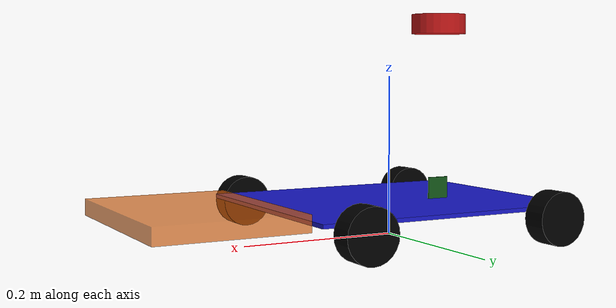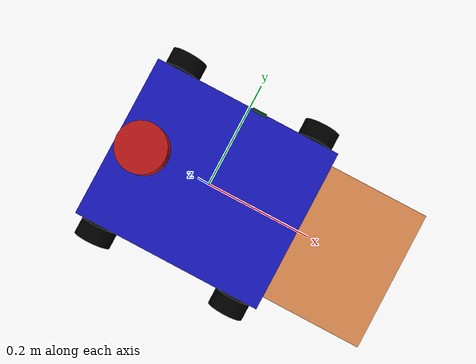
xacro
<?xml version="1.0"?>
<robot xmlns:xacro="http://www.ros.org/wiki/xacro" name="mecanum_robot">

    <!-- chassis properties -->
    <xacro:property name="chassis_length" value="0.35"/>
    <xacro:property name="chassis_width"  value="0.30"/>
    <xacro:property name="chassis_height" value="0.005"/>
    <xacro:property name="chassis_mass"   value="1.5"/>
    <xacro:property name="wheel_radius"   value="0.0325"/>
    <xacro:property name="wheel_thickness" value="0.03"/>
    <xacro:property name="wheel_mass"     value="0.1"/>
    <xacro:property name="ground_clearance" value="0.04"/>

    <!-- Temporary gripper collision footprint. -->
    <xacro:property name="gripper_box_length" value="0.18"/>
    <xacro:property name="gripper_box_width" value="0.25"/>
    <xacro:property name="gripper_box_height" value="0.02"/>
    <xacro:property name="gripper_box_mass" value="0.25"/>

    <xacro:property name="wheel_inset_x" value="0.045"/>
    <xacro:property name="wheel_inset_y" value="0.015"/>

    <xacro:property name="lidar_radius"     value="0.035"/>
    <xacro:property name="lidar_height"     value="0.025"/>
    <xacro:property name="lidar_mass"       value="0.2"/>
    <xacro:property name="lidar_x_offset"   value="-0.075"/>
    <xacro:property name="lidar_z_offset"   value="0.21"/>

    <!-- Raspberry Pi Camera Module 2 dimensions (metres). -->
    <xacro:property name="camera_width" value="0.025"/>
    <xacro:property name="camera_height" value="0.024"/>
    <xacro:property name="camera_depth" value="0.009"/>
    <xacro:property name="camera_board_depth" value="0.0016"/>
    <xacro:property name="camera_mass" value="0.01"/>
    <xacro:property name="camera_update_rate" value="10"/>
    <xacro:property name="camera_x_offset"   value="0.0205"/>
    <xacro:property name="camera_y_offset"   value="${ (chassis_width/2.0) - 0.002}"/>
    <xacro:property name="camera_z_offset"   value="0.01855"/>

    <xacro:property name="wheel_pos_x" value="${(chassis_length / 2.0) - wheel_inset_x}"/>
    <xacro:property name="wheel_pos_y" value="${(chassis_width / 2.0) + wheel_inset_y}"/>
    <xacro:property name="chassis_pos_z" value="${ground_clearance + (chassis_height / 2.0)}"/>
    <xacro:property name="wheel_pos_z"   value="${wheel_radius}"/>

    <xacro:property name="lidar_update_rate"   value="10"/>
    <xacro:property name="lidar_samples"       value="360"/>
    <xacro:property name="lidar_min_angle"     value="-3.14159"/>
    <xacro:property name="lidar_max_angle"     value="3.14159"/>
    <xacro:property name="lidar_min_range"     value="0.15"/>
    <xacro:property name="lidar_max_range"     value="12.0"/>
    <xacro:property name="lidar_noise_stddev"  value="0.01"/>

    <xacro:property name="wheelbase"        value="${wheel_pos_x * 2.0}"/>
    <xacro:property name="wheel_separation" value="${wheel_pos_y * 2.0}"/>

    <xacro:property name="imu_sensor_L_x_offset" value="-0.105"/>
    <xacro:property name="imu_sensor_L_y_offset" value="0.080"/>
    <xacro:property name="imu_sensor_R_x_offset" value="-0.105"/>
    <xacro:property name="imu_sensor_R_y_offset" value="-0.090"/>
    <xacro:property name="imu_sensor_z_offset" value="0.2"/>

    <!-- Sim Toggle -->
    <xacro:arg name="use_sim" default="false" />

    <xacro:macro name="inertial_box" params="mass x y z">
        <inertial>
            <origin xyz="0 0 0" rpy="0 0 0"/>
            <mass value="${mass}"/>
            <inertia ixx="${(mass/12.0) * (y*y + z*z)}" ixy="0.0" ixz="0.0"
                     iyy="${(mass/12.0) * (x*x + z*z)}" iyz="0.0"
                     izz="${(mass/12.0) * (x*x + y*y)}"/>
        </inertial>
    </xacro:macro>

    <xacro:macro name="inertial_cylinder" params="mass radius length">
        <inertial>
            <origin xyz="0 0 0" rpy="0 0 0"/>
            <mass value="${mass}"/>
            <inertia ixx="${(mass/12.0) * (3*radius*radius + length*length)}" ixy="0.0" ixz="0.0"
                     iyy="${(mass/12.0) * (3*radius*radius + length*length)}" iyz="0.0"
                     izz="${(0.5) * mass * (radius*radius)}"/>
        </inertial>
    </xacro:macro>

    <link name="base_link"/>

    <link name="chassis">
        <visual>
            <geometry>
                <box size="${chassis_length} ${chassis_width} ${chassis_height}"/>
            </geometry>
            <material name="blue"><color rgba="0.1 0.1 0.8 1.0"/></material>
        </visual>
        <collision>
            <geometry>
                <box size="${chassis_length} ${chassis_width} ${chassis_height}"/>
            </geometry>
        </collision>
        <xacro:inertial_box mass="${chassis_mass}" x="${chassis_length}" y="${chassis_width}" z="${chassis_height}"/>
    </link>

    <joint name="chassis_joint" type="fixed">
        <parent link="base_link"/>
        <child link="chassis"/>
        <origin xyz="0 0 ${chassis_pos_z}" rpy="0 0 0"/>
    </joint>

    <!-- Placeholder gripper collision box. Its 25 cm side is parallel to the
         robot width (Y), and its 18 cm side extends forward along +X. -->
    <link name="gripper_collision_box">
        <visual>
            <geometry>
                <box size="${gripper_box_length} ${gripper_box_width} ${gripper_box_height}"/>
            </geometry>
            <material name="gripper_orange">
                <color rgba="0.9 0.4 0.05 0.7"/>
            </material>
        </visual>
        <collision>
            <geometry>
                <box size="${gripper_box_length} ${gripper_box_width} ${gripper_box_height}"/>
            </geometry>
        </collision>
        <xacro:inertial_box
            mass="${gripper_box_mass}"
            x="${gripper_box_length}"
            y="${gripper_box_width}"
            z="${gripper_box_height}"/>
    </link>

    <joint name="gripper_collision_box_joint" type="fixed">
        <parent link="chassis"/>
        <child link="gripper_collision_box"/>
        <origin xyz="${(chassis_length + gripper_box_length) / 2.0} 0 0" rpy="0 0 0"/>
    </joint>

    <xacro:macro name="mecanum_wheel" params="prefix x_reflect y_reflect z_axis_reflect">
        <link name="${prefix}_wheel">
            <visual>
                <origin xyz="0 0 0" rpy="${pi/2} 0 0"/>
                <geometry>
                    <cylinder radius="${wheel_radius}" length="${wheel_thickness}"/>
                </geometry>
                <material name="black"><color rgba="0.0 0.0 0.0 1.0"/></material>
            </visual>
            <collision>
                <origin xyz="0 0 0" rpy="0 0 0"/>
                <geometry>
                    <sphere radius="${wheel_radius}"/>
                </geometry>
            </collision>
            <xacro:inertial_cylinder mass="${wheel_mass}" radius="${wheel_radius}" length="${wheel_thickness}"/>
        </link>

        <joint name="${prefix}_wheel_joint" type="continuous">
            <parent link="base_link"/>
            <child link="${prefix}_wheel"/>
            <origin xyz="${x_reflect * wheel_pos_x} ${y_reflect * wheel_pos_y} ${wheel_pos_z}" rpy="0 0 0"/>
            <axis xyz="0 1 0"/>
        </joint>

        <gazebo reference="${prefix}_wheel">
            <surface>
                <friction>
                    <ode>
                        <mu>0.0</mu>   <mu2>0.0</mu2>
                    </ode>
                </friction>
            </surface>
        </gazebo>
    </xacro:macro>

    <xacro:mecanum_wheel prefix="front_left"  x_reflect="1"  y_reflect="1"  z_axis_reflect="1" />
    <xacro:mecanum_wheel prefix="rear_left"   x_reflect="-1" y_reflect="1"  z_axis_reflect="1" />
    <xacro:mecanum_wheel prefix="front_right" x_reflect="1"  y_reflect="-1" z_axis_reflect="-1" />
    <xacro:mecanum_wheel prefix="rear_right"  x_reflect="-1" y_reflect="-1" z_axis_reflect="-1" />

    <!-- LIDAR -->
    <link name="laser_frame">
        <visual>
            <geometry>
                <cylinder radius="${lidar_radius}" length="${lidar_height}"/>
            </geometry>
            <material name="red"><color rgba="0.8 0.1 0.1 1.0"/></material>
        </visual>
        <collision>
            <geometry>
                <cylinder radius="${lidar_radius}" length="${lidar_height}"/>
            </geometry>
        </collision>
        <xacro:inertial_cylinder mass="${lidar_mass}" radius="${lidar_radius}" length="${lidar_height}"/>
    </link>

    <joint name="laser_joint" type="fixed">
        <parent link="chassis"/>
        <child link="laser_frame"/>
        <origin xyz="${lidar_x_offset} 0 ${(chassis_height/2.0) + (lidar_height/2.0) + (lidar_z_offset)}" rpy="0 0 0"/>
    </joint>

    <!-- CAMERA: +X points forward on the chassis.  The optical frame follows
         REP 103: +Z forward, +X right, +Y down. -->
    <link name="camera_link">
        <!-- The board is centred on camera_link; +X is the viewing direction. -->
        <visual>
            <origin xyz="${-(camera_depth - camera_board_depth) / 2.0} 0 0" rpy="0 0 0"/>
            <geometry>
                <box size="${camera_board_depth} ${camera_width} ${camera_height}"/>
            </geometry>
            <material name="camera_board_green"><color rgba="0.08 0.35 0.10 1.0"/></material>
        </visual>
        <collision>
            <geometry>
                <box size="${camera_depth} ${camera_width} ${camera_height}"/>
            </geometry>
        </collision>
        <xacro:inertial_box mass="${camera_mass}" x="${camera_depth}" y="${camera_width}" z="${camera_height}"/>
    </link>

    <joint name="camera_joint" type="fixed">
        <parent link="chassis"/>
        <child link="camera_link"/>
        <!-- The physical camera is upside down: roll pi about its viewing axis. -->
        <origin xyz="${(camera_depth / 2.0) + camera_x_offset} ${camera_y_offset} ${chassis_height/2.0 + camera_height/2.0 + camera_z_offset}" rpy="0 0 ${pi/2}"/>
    </joint>

    <link name="camera_optical_frame"/>
    <joint name="camera_optical_joint" type="fixed">
        <parent link="camera_link"/>
        <child link="camera_optical_frame"/>
        <origin xyz="0.0 0 0" rpy="${-pi/2} 0 ${-pi/2}"/>
    </joint>

    <!-- SENSOR LINKS FOR ROS2_CONTROL -->
    <link name="imu_sensor_L"/>
    <joint name="imu_L_joint" type="fixed">
        <parent link="chassis"/>
        <child link="imu_sensor_L"/>
        <origin xyz="${imu_sensor_L_x_offset} ${imu_sensor_L_y_offset} ${imu_sensor_z_offset}" rpy="0 0 0"/>
    </joint>

    <link name="imu_sensor_R"/>
    <joint name="imu_R_joint" type="fixed">
        <parent link="chassis"/>
        <child link="imu_sensor_R"/>
        <origin xyz="${imu_sensor_R_x_offset} ${imu_sensor_R_y_offset} ${imu_sensor_z_offset}" rpy="0 0 0"/>
    </joint>

    <link name="ir_sensor_1"/>
    <joint name="ir_1_joint" type="fixed">
        <parent link="chassis"/>
        <child link="ir_sensor_1"/>
        <origin xyz="0.2 0.1 0" rpy="0 0 0"/>
    </joint>

    <link name="ir_sensor_2"/>
    <joint name="ir_2_joint" type="fixed">
        <parent link="chassis"/>
        <child link="ir_sensor_2"/>
        <origin xyz="0.2 -0.1 0" rpy="0 0 0"/>
    </joint>

    <link name="ir_sensor_3"/>
    <joint name="ir_3_joint" type="fixed">
        <parent link="chassis"/>
        <child link="ir_sensor_3"/>
        <origin xyz="-0.2 0.1 0" rpy="0 0 0"/>
    </joint>

    <link name="ir_sensor_4"/>
    <joint name="ir_4_joint" type="fixed">
        <parent link="chassis"/>
        <child link="ir_sensor_4"/>
        <origin xyz="-0.2 -0.1 0" rpy="0 0 0"/>
    </joint>

    <!-- LEFT SERVO (Front) -->
    <link name="servo_L_link"/>
    <joint name="servo_L_joint" type="continuous">
        <parent link="chassis"/>
        <child link="servo_L_link"/>
        <origin xyz="0.2 0.0 0.1" rpy="0 0 0"/>
        <axis xyz="0 0 1"/>
    </joint>

    <!-- RIGHT SERVO (Rear) -->
    <link name="servo_R_link"/>
    <joint name="servo_R_joint" type="continuous">
        <parent link="chassis"/>
        <child link="servo_R_link"/>
        <origin xyz="-0.2 0.0 0.1" rpy="0 0 0"/>
        <axis xyz="0 0 1"/>
    </joint>

    <!-- REAL HARDWARE (Arduino ros2_control: LEFT/RIGHT) -->
    <xacro:unless value="$(arg use_sim)">
        <ros2_control name="ArduinoLeft" type="system">
            <hardware>
                <plugin>arduino_hardware_interface/ArduinoHardwareInterface</plugin>
                <param name="serial_port">/dev/ttyNANO_L</param>
                <param name="baudrate">115200</param>
                <param name="initial_servo_angle">110.0</param>
            </hardware>

            <joint name="rear_left_wheel_joint">
                <command_interface name="velocity"/>
                <state_interface name="position"/>
                <state_interface name="velocity"/>
                <param name="direction_multiplier">1</param>
            </joint>
            <joint name="front_left_wheel_joint">
                <command_interface name="velocity"/>
                <state_interface name="position"/>
                <state_interface name="velocity"/>
                <param name="direction_multiplier">1</param>
            </joint>

            <joint name="servo_L_joint">
                <command_interface name="position"/>
                <state_interface name="position"/>
            </joint>

            <sensor name="imu_sensor_L">
                <state_interface name="orientation.x"/>
                <state_interface name="orientation.y"/>
                <state_interface name="orientation.z"/>
                <state_interface name="orientation.w"/>
                <state_interface name="angular_velocity.x"/>
                <state_interface name="angular_velocity.y"/>
                <state_interface name="angular_velocity.z"/>
                <state_interface name="linear_acceleration.x"/>
                <state_interface name="linear_acceleration.y"/>
                <state_interface name="linear_acceleration.z"/>
            </sensor>
            <sensor name="ir_sensor_1">
                <state_interface name="range"/>
            </sensor>
            <sensor name="ir_sensor_2">
                <state_interface name="range"/>
            </sensor>
        </ros2_control>

        <ros2_control name="ArduinoRight" type="system">
            <hardware>
                <plugin>arduino_hardware_interface/ArduinoHardwareInterface</plugin>
                <param name="serial_port">/dev/ttyNANO_R</param>
                <param name="baudrate">115200</param>
                <param name="initial_servo_angle">80.0</param>
            </hardware>

            <joint name="rear_right_wheel_joint">
                <command_interface name="velocity"/>
                <state_interface name="position"/>
                <state_interface name="velocity"/>
                <param name="direction_multiplier">-1</param>
            </joint>
            <joint name="front_right_wheel_joint">
                <command_interface name="velocity"/>
                <state_interface name="position"/>
                <state_interface name="velocity"/>
                <param name="direction_multiplier">-1</param>
            </joint>

            <joint name="servo_R_joint">
                <command_interface name="position"/>
                <state_interface name="position"/>
            </joint>

            <sensor name="imu_sensor_R">
                <state_interface name="orientation.x"/>
                <state_interface name="orientation.y"/>
                <state_interface name="orientation.z"/>
                <state_interface name="orientation.w"/>
                <state_interface name="angular_velocity.x"/>
                <state_interface name="angular_velocity.y"/>
                <state_interface name="angular_velocity.z"/>
                <state_interface name="linear_acceleration.x"/>
                <state_interface name="linear_acceleration.y"/>
                <state_interface name="linear_acceleration.z"/>
            </sensor>
            <sensor name="ir_sensor_3">
                <state_interface name="range"/>
            </sensor>
            <sensor name="ir_sensor_4">
                <state_interface name="range"/>
            </sensor>
        </ros2_control>
    </xacro:unless>

    <!-- SIMULATION (Gazebo Plugins) -->
    <xacro:if value="$(arg use_sim)">
        <gazebo>
            <plugin filename="gz-sim-odometry-publisher-system" name="gz::sim::systems::OdometryPublisher">
                <odom_frame>odom</odom_frame>
                <robot_base_frame>base_link</robot_base_frame>
                <odom_topic>/odometry/wheel</odom_topic>
                <!-- The EKF, rather than raw simulation, owns odom to base_link. -->
                <tf_topic>/odometry/wheel_tf</tf_topic>
                <odom_publish_frequency>50</odom_publish_frequency>
            </plugin>

            <plugin filename="gz-sim-velocity-control-system" name="gz::sim::systems::VelocityControl">
                <topic>/cmd_vel</topic>
            </plugin>
            <plugin filename="gz-sim-joint-state-publisher-system" name="gz::sim::systems::JointStatePublisher">
                <topic>/joint_states</topic>
                <joint>front_left_wheel_joint</joint>
                <joint>front_right_wheel_joint</joint>
                <joint>rear_left_wheel_joint</joint>
                <joint>rear_right_wheel_joint</joint>
            </plugin>
        </gazebo>

        <gazebo reference="imu_sensor_L">
            <sensor name="imu_sensor_L_sim" type="imu">
                <always_on>true</always_on>
                <update_rate>50</update_rate>
                <topic>/imu_sensor_L_broadcaster/imu</topic>
                <gz_frame_id>imu_sensor_L</gz_frame_id>
                <imu>
                    <angular_velocity>
                        <x><noise type="gaussian"><mean>0.0</mean><stddev>0.002</stddev></noise></x>
                        <y><noise type="gaussian"><mean>0.0</mean><stddev>0.002</stddev></noise></y>
                        <z><noise type="gaussian"><mean>0.0</mean><stddev>0.002</stddev></noise></z>
                    </angular_velocity>
                    <linear_acceleration>
                        <x><noise type="gaussian"><mean>0.0</mean><stddev>0.02</stddev></noise></x>
                        <y><noise type="gaussian"><mean>0.0</mean><stddev>0.02</stddev></noise></y>
                        <z><noise type="gaussian"><mean>0.0</mean><stddev>0.02</stddev></noise></z>
                    </linear_acceleration>
                </imu>
            </sensor>
        </gazebo>

        <gazebo reference="imu_sensor_R">
            <sensor name="imu_sensor_R_sim" type="imu">
                <always_on>true</always_on>
                <update_rate>50</update_rate>
                <topic>/imu_sensor_R_broadcaster/imu</topic>
                <gz_frame_id>imu_sensor_R</gz_frame_id>
                <imu>
                    <angular_velocity>
                        <x><noise type="gaussian"><mean>0.0</mean><stddev>0.002</stddev></noise></x>
                        <y><noise type="gaussian"><mean>0.0</mean><stddev>0.002</stddev></noise></y>
                        <z><noise type="gaussian"><mean>0.0</mean><stddev>0.002</stddev></noise></z>
                    </angular_velocity>
                    <linear_acceleration>
                        <x><noise type="gaussian"><mean>0.0</mean><stddev>0.02</stddev></noise></x>
                        <y><noise type="gaussian"><mean>0.0</mean><stddev>0.02</stddev></noise></y>
                        <z><noise type="gaussian"><mean>0.0</mean><stddev>0.02</stddev></noise></z>
                    </linear_acceleration>
                </imu>
            </sensor>
        </gazebo>

        <gazebo reference="laser_frame">
            <sensor name="gpu_lidar" type="gpu_lidar">
                <pose>0 0 0 0 0 0</pose>
                <always_on>true</always_on>
                <update_rate>${lidar_update_rate}</update_rate>
                <visualize>false</visualize>
                <topic>/scan</topic>
                <gz_frame_id>laser_frame</gz_frame_id>
                <lidar>
                    <scan>
                        <horizontal>
                            <samples>${lidar_samples}</samples>
                            <resolution>1</resolution>
                            <min_angle>${lidar_min_angle}</min_angle>
                            <max_angle>${lidar_max_angle}</max_angle>
                        </horizontal>
                    </scan>
                    <range>
                        <min>${lidar_min_range}</min>
                        <max>${lidar_max_range}</max>
                        <resolution>0.01</resolution>
                    </range>
                    <noise>
                        <type>gaussian</type>
                        <mean>0.0</mean>
                        <stddev>${lidar_noise_stddev}</stddev>
                    </noise>
                </lidar>
            </sensor>
        </gazebo>

        <!-- Gazebo camera rays use the camera-link convention (+X forward).
             Messages are labelled with the ROS optical frame. -->
        <gazebo reference="camera_link">
            <sensor name="front_camera" type="camera">
                <pose>0 0 0 0 0 0</pose>
                <always_on>true</always_on>
                <update_rate>${camera_update_rate}</update_rate>
                <visualize>false</visualize>
                <topic>/camera/image_raw</topic>
                <gz_frame_id>camera_optical_frame</gz_frame_id>
                <camera>
                    <horizontal_fov>1.0856</horizontal_fov>
                    <image>
                        <width>640</width>
                        <height>480</height>
                        <format>L8</format>
                    </image>
                    <clip>
                        <near>0.05</near>
                        <far>20.0</far>
                    </clip>
                    <camera_info_topic>/camera/camera_info</camera_info_topic>
                </camera>
            </sensor>
        </gazebo>
    </xacro:if>

</robot>
